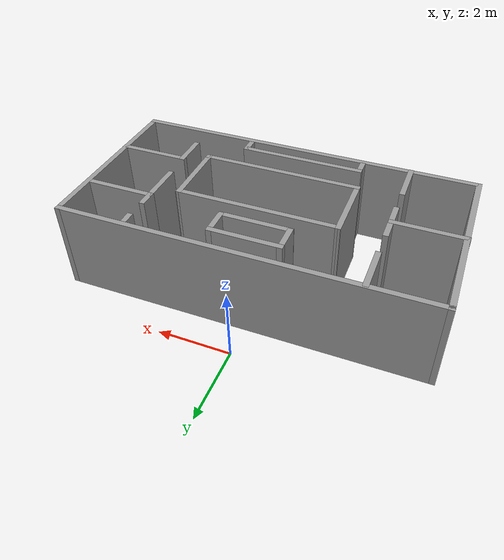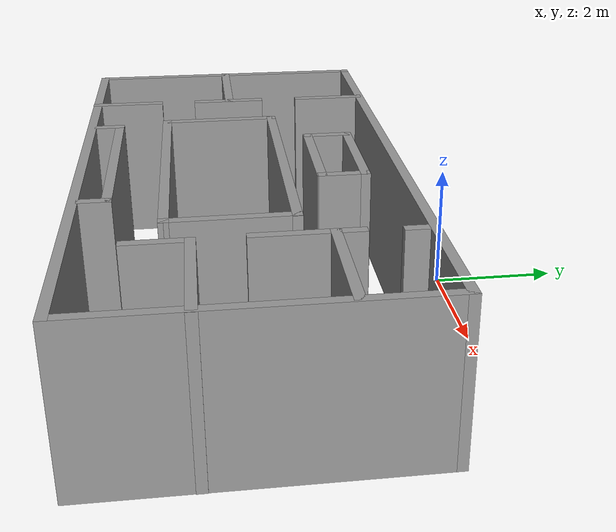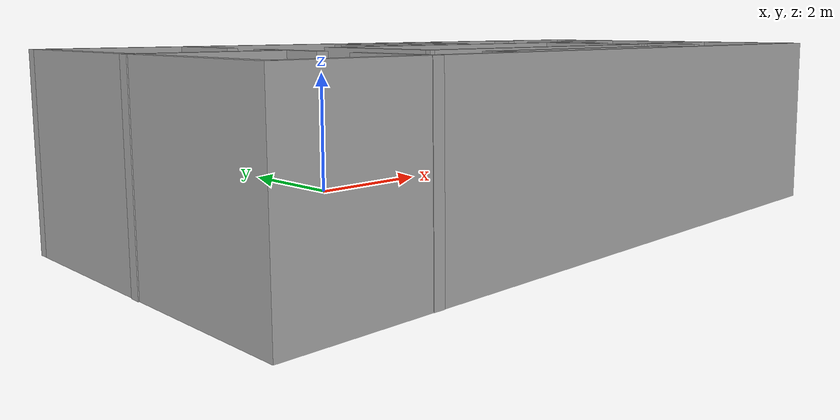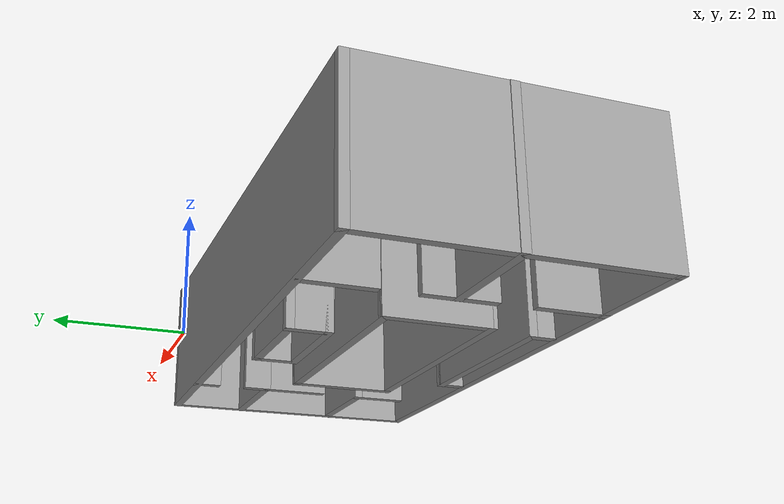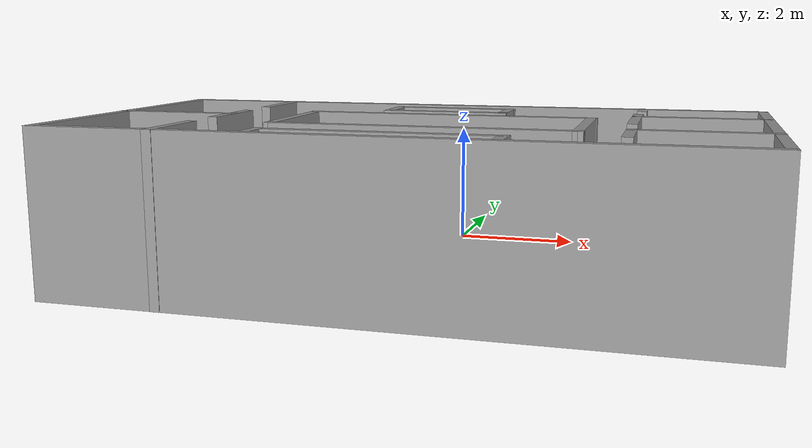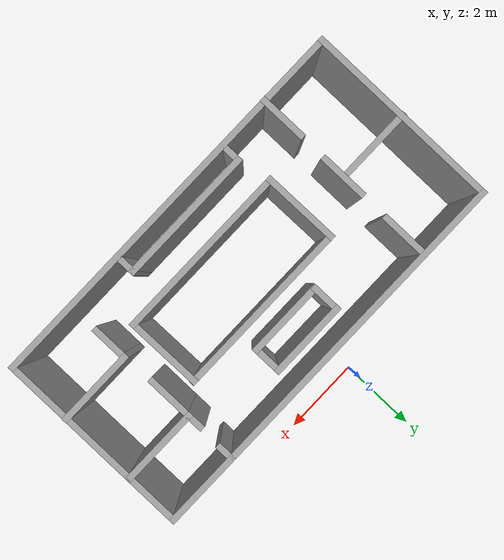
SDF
<?xml version='1.0'?>
<sdf version='1.7'>
  <model name='turtlebot3_library_test'>
    <pose>0.142031 -2.93079 0 0 -0 0</pose>
    <link name='Wall_1'>
      <collision name='Wall_1_Collision'>
        <geometry>
          <box>
            <size>10 0.15 2.5</size>
          </box>
        </geometry>
        <pose>0 0 1.25 0 -0 0</pose>
      </collision>
      <visual name='Wall_1_Visual'>
        <pose>0 0 1.25 0 -0 0</pose>
        <geometry>
          <box>
            <size>10 0.15 2.5</size>
          </box>
        </geometry>
        <material>
          <script>
            <uri>file://media/materials/scripts/gazebo.material</uri>
            <name>Gazebo/Grey</name>
          </script>
          <ambient>1 1 1 1</ambient>
        </material>
        <meta>
          <layer>0</layer>
        </meta>
      </visual>
      <pose>0.002969 2.00079 0 0 -0 0</pose>
    </link>
    <link name='Wall_13'>
      <collision name='Wall_13_Collision'>
        <geometry>
          <box>
            <size>2 0.15 2.5</size>
          </box>
        </geometry>
        <pose>0 0 1.25 0 -0 0</pose>
      </collision>
      <visual name='Wall_13_Visual'>
        <pose>0 0 1.25 0 -0 0</pose>
        <geometry>
          <box>
            <size>2 0.15 2.5</size>
          </box>
        </geometry>
        <material>
          <script>
            <uri>file://media/materials/scripts/gazebo.material</uri>
            <name>Gazebo/Grey</name>
          </script>
          <ambient>1 1 1 1</ambient>
        </material>
        <meta>
          <layer>0</layer>
        </meta>
      </visual>
      <pose>0.050497 1.42284 0 0 -0 0</pose>
    </link>
    <link name='Wall_15'>
      <collision name='Wall_15_Collision'>
        <geometry>
          <box>
            <size>0.795626 0.15 2.5</size>
          </box>
        </geometry>
        <pose>0 0 1.25 0 -0 0</pose>
      </collision>
      <visual name='Wall_15_Visual'>
        <pose>0 0 1.25 0 -0 0</pose>
        <geometry>
          <box>
            <size>0.795626 0.15 2.5</size>
          </box>
        </geometry>
        <material>
          <script>
            <uri>file://media/materials/scripts/gazebo.material</uri>
            <name>Gazebo/Grey</name>
          </script>
          <ambient>1 1 1 1</ambient>
        </material>
        <meta>
          <layer>0</layer>
        </meta>
      </visual>
      <pose>-0.874503 1.10003 0 0 -0 -1.5708</pose>
    </link>
    <link name='Wall_16'>
      <collision name='Wall_16_Collision'>
        <geometry>
          <box>
            <size>2 0.15 2.5</size>
          </box>
        </geometry>
        <pose>0 0 1.25 0 -0 0</pose>
      </collision>
      <visual name='Wall_16_Visual'>
        <pose>0 0 1.25 0 -0 0</pose>
        <geometry>
          <box>
            <size>2 0.15 2.5</size>
          </box>
        </geometry>
        <material>
          <script>
            <uri>file://media/materials/scripts/gazebo.material</uri>
            <name>Gazebo/Grey</name>
          </script>
          <ambient>1 1 1 1</ambient>
        </material>
        <meta>
          <layer>0</layer>
        </meta>
      </visual>
      <pose>0.050497 0.762003 0 0 -0 0</pose>
    </link>
    <link name='Wall_17'>
      <collision name='Wall_17_Collision'>
        <geometry>
          <box>
            <size>0.795626 0.15 2.5</size>
          </box>
        </geometry>
        <pose>0 0 1.25 0 -0 0</pose>
      </collision>
      <visual name='Wall_17_Visual'>
        <pose>0 0 1.25 0 -0 0</pose>
        <geometry>
          <box>
            <size>0.795626 0.15 2.5</size>
          </box>
        </geometry>
        <material>
          <script>
            <uri>file://media/materials/scripts/gazebo.material</uri>
            <name>Gazebo/Grey</name>
          </script>
          <ambient>1 1 1 1</ambient>
        </material>
        <meta>
          <layer>0</layer>
        </meta>
      </visual>
      <pose>0.975497 1.10003 0 0 -0 1.5708</pose>
    </link>
    <link name='Wall_26'>
      <collision name='Wall_26_Collision'>
        <geometry>
          <box>
            <size>3.5 0.15 2.5</size>
          </box>
        </geometry>
        <pose>0 0 1.25 0 -0 0</pose>
      </collision>
      <visual name='Wall_26_Visual'>
        <pose>0 0 1.25 0 -0 0</pose>
        <geometry>
          <box>
            <size>3.5 0.15 2.5</size>
          </box>
        </geometry>
        <material>
          <script>
            <uri>file://media/materials/scripts/gazebo.material</uri>
            <name>Gazebo/Grey</name>
          </script>
          <ambient>1 1 1 1</ambient>
        </material>
        <meta>
          <layer>0</layer>
        </meta>
      </visual>
      <pose>-0.081611 -2.37935 0 0 -0 0</pose>
    </link>
    <link name='Wall_27'>
      <collision name='Wall_27_Collision'>
        <geometry>
          <box>
            <size>0.5 0.15 2.5</size>
          </box>
        </geometry>
        <pose>0 0 1.25 0 -0 0</pose>
      </collision>
      <visual name='Wall_27_Visual'>
        <pose>0 0 1.25 0 -0 0</pose>
        <geometry>
          <box>
            <size>0.5 0.15 2.5</size>
          </box>
        </geometry>
        <material>
          <script>
            <uri>file://media/materials/scripts/gazebo.material</uri>
            <name>Gazebo/Grey</name>
          </script>
          <ambient>1 1 1 1</ambient>
        </material>
        <meta>
          <layer>0</layer>
        </meta>
      </visual>
      <pose>1.59339 -2.55435 0 0 -0 -1.5708</pose>
    </link>
    <link name='Wall_29'>
      <collision name='Wall_29_Collision'>
        <geometry>
          <box>
            <size>0.5 0.15 2.5</size>
          </box>
        </geometry>
        <pose>0 0 1.25 0 -0 0</pose>
      </collision>
      <visual name='Wall_29_Visual'>
        <pose>0 0 1.25 0 -0 0</pose>
        <geometry>
          <box>
            <size>0.5 0.15 2.5</size>
          </box>
        </geometry>
        <material>
          <script>
            <uri>file://media/materials/scripts/gazebo.material</uri>
            <name>Gazebo/Grey</name>
          </script>
          <ambient>1 1 1 1</ambient>
        </material>
        <meta>
          <layer>0</layer>
        </meta>
      </visual>
      <pose>-1.75661 -2.55435 0 0 -0 -1.5708</pose>
    </link>
    <link name='Wall_31'>
      <collision name='Wall_31_Collision'>
        <geometry>
          <box>
            <size>1.96292 0.15 2.5</size>
          </box>
        </geometry>
        <pose>0 0 1.25 0 -0 0</pose>
      </collision>
      <visual name='Wall_31_Visual'>
        <pose>0 0 1.25 0 -0 0</pose>
        <geometry>
          <box>
            <size>1.96292 0.15 2.5</size>
          </box>
        </geometry>
        <material>
          <script>
            <uri>file://media/materials/scripts/gazebo.material</uri>
            <name>Gazebo/Grey</name>
          </script>
          <ambient>1 1 1 1</ambient>
        </material>
        <meta>
          <layer>0</layer>
        </meta>
      </visual>
      <pose>-1.93151 -0.669906 0 0 -0 -1.56241</pose>
    </link>
    <link name='Wall_32'>
      <collision name='Wall_32_Collision'>
        <geometry>
          <box>
            <size>4.5 0.15 2.5</size>
          </box>
        </geometry>
        <pose>0 0 1.25 0 -0 0</pose>
      </collision>
      <visual name='Wall_32_Visual'>
        <pose>0 0 1.25 0 -0 0</pose>
        <geometry>
          <box>
            <size>4.5 0.15 2.5</size>
          </box>
        </geometry>
        <material>
          <script>
            <uri>file://media/materials/scripts/gazebo.material</uri>
            <name>Gazebo/Grey</name>
          </script>
          <ambient>1 1 1 1</ambient>
        </material>
        <meta>
          <layer>0</layer>
        </meta>
      </visual>
      <pose>0.251093 -1.57637 0 0 -0 0</pose>
    </link>
    <link name='Wall_33'>
      <collision name='Wall_33_Collision'>
        <geometry>
          <box>
            <size>1.96292 0.15 2.5</size>
          </box>
        </geometry>
        <pose>0 0 1.25 0 -0 0</pose>
      </collision>
      <visual name='Wall_33_Visual'>
        <pose>0 0 1.25 0 -0 0</pose>
        <geometry>
          <box>
            <size>1.96292 0.15 2.5</size>
          </box>
        </geometry>
        <material>
          <script>
            <uri>file://media/materials/scripts/gazebo.material</uri>
            <name>Gazebo/Grey</name>
          </script>
          <ambient>1 1 1 1</ambient>
        </material>
        <meta>
          <layer>0</layer>
        </meta>
      </visual>
      <pose>2.41849 -0.669906 0 0 -0 1.57919</pose>
    </link>
    <link name='Wall_34'>
      <collision name='Wall_34_Collision'>
        <geometry>
          <box>
            <size>4.5 0.15 2.5</size>
          </box>
        </geometry>
        <pose>0 0 1.25 0 -0 0</pose>
      </collision>
      <visual name='Wall_34_Visual'>
        <pose>0 0 1.25 0 -0 0</pose>
        <geometry>
          <box>
            <size>4.5 0.15 2.5</size>
          </box>
        </geometry>
        <material>
          <script>
            <uri>file://media/materials/scripts/gazebo.material</uri>
            <name>Gazebo/Grey</name>
          </script>
          <ambient>1 1 1 1</ambient>
        </material>
        <meta>
          <layer>0</layer>
        </meta>
      </visual>
      <pose>0.251093 0.236556 0 0 -0 3.14159</pose>
    </link>
    <link name='Wall_36'>
      <collision name='Wall_36_Collision'>
        <geometry>
          <box>
            <size>1.25 0.15 2.5</size>
          </box>
        </geometry>
        <pose>0 0 1.25 0 -0 0</pose>
      </collision>
      <visual name='Wall_36_Visual'>
        <pose>0 0 1.25 0 -0 0</pose>
        <geometry>
          <box>
            <size>1.25 0.15 2.5</size>
          </box>
        </geometry>
        <material>
          <script>
            <uri>file://media/materials/scripts/gazebo.material</uri>
            <name>Gazebo/Grey</name>
          </script>
          <ambient>1 1 1 1</ambient>
        </material>
        <meta>
          <layer>0</layer>
        </meta>
      </visual>
      <pose>-3.06456 1.40514 0 0 -0 -1.5708</pose>
    </link>
    <link name='Wall_38'>
      <collision name='Wall_38_Collision'>
        <geometry>
          <box>
            <size>1.25 0.15 2.5</size>
          </box>
        </geometry>
        <pose>0 0 1.25 0 -0 0</pose>
      </collision>
      <visual name='Wall_38_Visual'>
        <pose>0 0 1.25 0 -0 0</pose>
        <geometry>
          <box>
            <size>1.25 0.15 2.5</size>
          </box>
        </geometry>
        <material>
          <script>
            <uri>file://media/materials/scripts/gazebo.material</uri>
            <name>Gazebo/Grey</name>
          </script>
          <ambient>1 1 1 1</ambient>
        </material>
        <meta>
          <layer>0</layer>
        </meta>
      </visual>
      <pose>-3.07977 -0.465532 0 0 -0 -1.5708</pose>
    </link>
    <link name='Wall_4'>
      <collision name='Wall_4_Collision'>
        <geometry>
          <box>
            <size>5 0.15 2.5</size>
          </box>
        </geometry>
        <pose>0 0 1.25 0 -0 0</pose>
      </collision>
      <visual name='Wall_4_Visual'>
        <pose>0 0 1.25 0 -0 0</pose>
        <geometry>
          <box>
            <size>5 0.15 2.5</size>
          </box>
        </geometry>
        <material>
          <script>
            <uri>file://media/materials/scripts/gazebo.material</uri>
            <name>Gazebo/Grey</name>
          </script>
          <ambient>1 1 1 1</ambient>
        </material>
        <meta>
          <layer>0</layer>
        </meta>
      </visual>
      <pose>-4.92203 -0.424209 0 0 -0 -1.5708</pose>
    </link>
    <link name='Wall_40'>
      <collision name='Wall_40_Collision'>
        <geometry>
          <box>
            <size>1.25 0.15 2.5</size>
          </box>
        </geometry>
        <pose>0 0 1.25 0 -0 0</pose>
      </collision>
      <visual name='Wall_40_Visual'>
        <pose>0 0 1.25 0 -0 0</pose>
        <geometry>
          <box>
            <size>1.25 0.15 2.5</size>
          </box>
        </geometry>
        <material>
          <script>
            <uri>file://media/materials/scripts/gazebo.material</uri>
            <name>Gazebo/Grey</name>
          </script>
          <ambient>1 1 1 1</ambient>
        </material>
        <meta>
          <layer>0</layer>
        </meta>
      </visual>
      <pose>-3.09498 -2.30579 0 0 -0 -1.5708</pose>
    </link>
    <link name='Wall_42'>
      <collision name='Wall_42_Collision'>
        <geometry>
          <box>
            <size>2 0.15 2.5</size>
          </box>
        </geometry>
        <pose>0 0 1.25 0 -0 0</pose>
      </collision>
      <visual name='Wall_42_Visual'>
        <pose>0 0 1.25 0 -0 0</pose>
        <geometry>
          <box>
            <size>2 0.15 2.5</size>
          </box>
        </geometry>
        <material>
          <script>
            <uri>file://media/materials/scripts/gazebo.material</uri>
            <name>Gazebo/Grey</name>
          </script>
          <ambient>1 1 1 1</ambient>
        </material>
        <meta>
          <layer>0</layer>
        </meta>
      </visual>
      <pose>-4.01024 -0.447838 0 0 -0 0</pose>
    </link>
    <link name='Wall_44'>
      <collision name='Wall_44_Collision'>
        <geometry>
          <box>
            <size>0.5 0.15 2.5</size>
          </box>
        </geometry>
        <pose>0 0 1.25 0 -0 0</pose>
      </collision>
      <visual name='Wall_44_Visual'>
        <pose>0 0 1.25 0 -0 0</pose>
        <geometry>
          <box>
            <size>0.5 0.15 2.5</size>
          </box>
        </geometry>
        <material>
          <script>
            <uri>file://media/materials/scripts/gazebo.material</uri>
            <name>Gazebo/Grey</name>
          </script>
          <ambient>1 1 1 1</ambient>
        </material>
        <meta>
          <layer>0</layer>
        </meta>
      </visual>
      <pose>3.07977 1.82577 0 0 -0 -1.5708</pose>
    </link>
    <link name='Wall_46'>
      <collision name='Wall_46_Collision'>
        <geometry>
          <box>
            <size>0.5 0.15 2.5</size>
          </box>
        </geometry>
        <pose>0 0 1.25 0 -0 0</pose>
      </collision>
      <visual name='Wall_46_Visual'>
        <pose>0 0 1.25 0 -0 0</pose>
        <geometry>
          <box>
            <size>0.5 0.15 2.5</size>
          </box>
        </geometry>
        <material>
          <script>
            <uri>file://media/materials/scripts/gazebo.material</uri>
            <name>Gazebo/Grey</name>
          </script>
          <ambient>1 1 1 1</ambient>
        </material>
        <meta>
          <layer>0</layer>
        </meta>
      </visual>
      <pose>3.04935 0.852411 0 0 -0 -1.5708</pose>
    </link>
    <link name='Wall_47'>
      <collision name='Wall_47_Collision'>
        <geometry>
          <box>
            <size>2 0.15 2.5</size>
          </box>
        </geometry>
        <pose>0 0 1.25 0 -0 0</pose>
      </collision>
      <visual name='Wall_47_Visual'>
        <pose>0 0 1.25 0 -0 0</pose>
        <geometry>
          <box>
            <size>2 0.15 2.5</size>
          </box>
        </geometry>
        <material>
          <script>
            <uri>file://media/materials/scripts/gazebo.material</uri>
            <name>Gazebo/Grey</name>
          </script>
          <ambient>1 1 1 1</ambient>
        </material>
        <meta>
          <layer>0</layer>
        </meta>
      </visual>
      <pose>3.97435 0.677411 0 0 -0 0</pose>
    </link>
    <link name='Wall_49'>
      <collision name='Wall_49_Collision'>
        <geometry>
          <box>
            <size>1.25 0.15 2.5</size>
          </box>
        </geometry>
        <pose>0 0 1.25 0 -0 0</pose>
      </collision>
      <visual name='Wall_49_Visual'>
        <pose>0 0 1.25 0 -0 0</pose>
        <geometry>
          <box>
            <size>1.25 0.15 2.5</size>
          </box>
        </geometry>
        <material>
          <script>
            <uri>file://media/materials/scripts/gazebo.material</uri>
            <name>Gazebo/Grey</name>
          </script>
          <ambient>1 1 1 1</ambient>
        </material>
        <meta>
          <layer>0</layer>
        </meta>
      </visual>
      <pose>3.04935 0.127411 0 0 -0 -1.5708</pose>
    </link>
    <link name='Wall_5'>
      <collision name='Wall_5_Collision'>
        <geometry>
          <box>
            <size>10 0.15 2.5</size>
          </box>
        </geometry>
        <pose>0 0 1.25 0 -0 0</pose>
      </collision>
      <visual name='Wall_5_Visual'>
        <pose>0 0 1.25 0 -0 0</pose>
        <geometry>
          <box>
            <size>10 0.15 2.5</size>
          </box>
        </geometry>
        <material>
          <script>
            <uri>file://media/materials/scripts/gazebo.material</uri>
            <name>Gazebo/Grey</name>
          </script>
          <ambient>1 1 1 1</ambient>
        </material>
        <meta>
          <layer>0</layer>
        </meta>
      </visual>
      <pose>0.002969 -2.84921 0 0 -0 0</pose>
    </link>
    <link name='Wall_51'>
      <collision name='Wall_51_Collision'>
        <geometry>
          <box>
            <size>2 0.15 2.5</size>
          </box>
        </geometry>
        <pose>0 0 1.25 0 -0 0</pose>
      </collision>
      <visual name='Wall_51_Visual'>
        <pose>0 0 1.25 0 -0 0</pose>
        <geometry>
          <box>
            <size>2 0.15 2.5</size>
          </box>
        </geometry>
        <material>
          <script>
            <uri>file://media/materials/scripts/gazebo.material</uri>
            <name>Gazebo/Grey</name>
          </script>
          <ambient>1 1 1 1</ambient>
        </material>
        <meta>
          <layer>0</layer>
        </meta>
      </visual>
      <pose>4.01024 -1.22348 0 0 -0 3.14159</pose>
    </link>
    <link name='Wall_52'>
      <collision name='Wall_52_Collision'>
        <geometry>
          <box>
            <size>1 0.15 2.5</size>
          </box>
        </geometry>
        <pose>0 0 1.25 0 -0 0</pose>
      </collision>
      <visual name='Wall_52_Visual'>
        <pose>0 0 1.25 0 -0 0</pose>
        <geometry>
          <box>
            <size>1 0.15 2.5</size>
          </box>
        </geometry>
        <material>
          <script>
            <uri>file://media/materials/scripts/gazebo.material</uri>
            <name>Gazebo/Grey</name>
          </script>
          <ambient>1 1 1 1</ambient>
        </material>
        <meta>
          <layer>0</layer>
        </meta>
      </visual>
      <pose>3.08524 -1.64848 0 0 -0 -1.5708</pose>
    </link>
    <link name='Wall_6'>
      <collision name='Wall_6_Collision'>
        <geometry>
          <box>
            <size>5 0.15 2.5</size>
          </box>
        </geometry>
        <pose>0 0 1.25 0 -0 0</pose>
      </collision>
      <visual name='Wall_6_Visual'>
        <pose>0 0 1.25 0 -0 0</pose>
        <geometry>
          <box>
            <size>5 0.15 2.5</size>
          </box>
        </geometry>
        <material>
          <script>
            <uri>file://media/materials/scripts/gazebo.material</uri>
            <name>Gazebo/Grey</name>
          </script>
          <ambient>1 1 1 1</ambient>
        </material>
        <meta>
          <layer>0</layer>
        </meta>
      </visual>
      <pose>4.92797 -0.424209 0 0 -0 1.5708</pose>
    </link>
    <static>1</static>
  </model>
</sdf>
